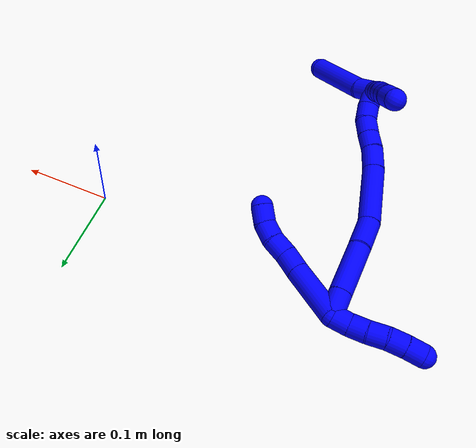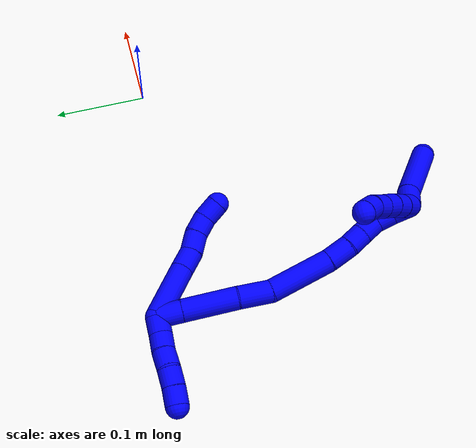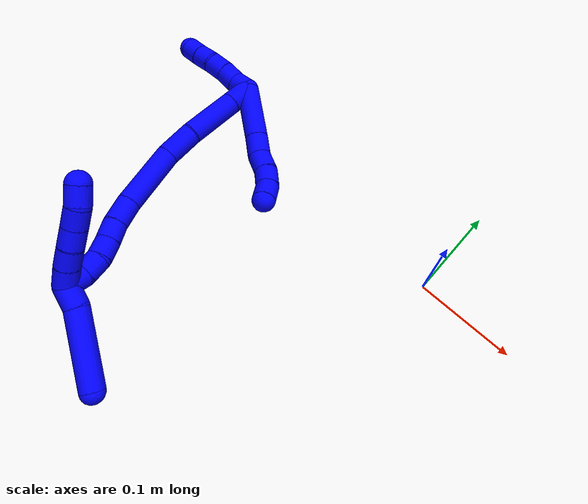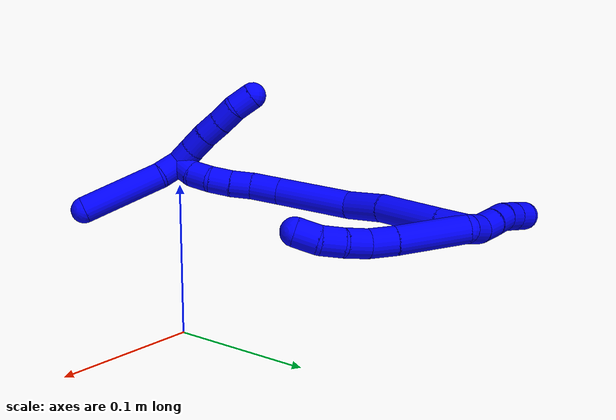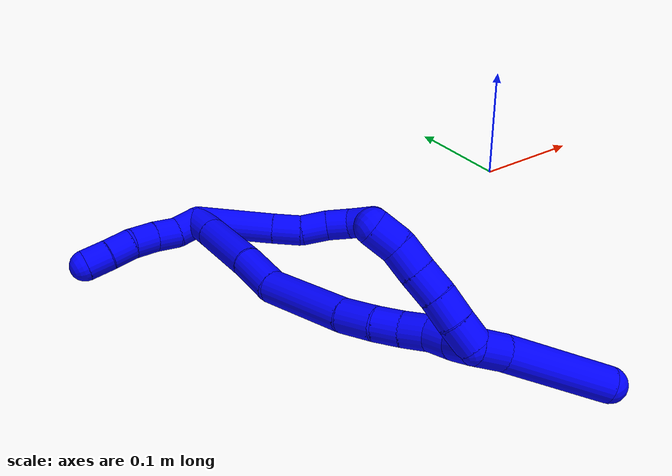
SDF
<sdf version="1.7">
 <world name="default">
  <model name="1">
   <static>0</static>
   <link name="1">
    <collision name="collision-cylinder-e_1_2_8">
     <pose>0.017115 -0.01025 0.024246 0.399953 0.576503 0.120052</pose>
     <geometry><cylinder><radius>0.0125</radius><length>0.062797</length></cylinder></geometry>
     <surface>
      <friction><ode><mu>1.16</mu><mu2>1.16</mu2><slip1>0</slip1><slip2>0</slip2></ode></friction>
      <contact><ode><kp>1e+06</kp><kd>1</kd><max_vel>0</max_vel><min_depth>0.001</min_depth></ode></contact>
     </surface>
    </collision>
    <visual name="visual-cylinder-e_1_2_8">
     <pose>0.017115 -0.01025 0.024246 0.399953 0.576503 0.120052</pose>
     <geometry><cylinder><radius>0.0125</radius><length>0.062797</length></cylinder></geometry>
     <material><ambient>0 0 1 1</ambient></material>
    </visual>
    <collision name="collision-cylinder-e_2_8_9">
     <pose>0.040445 -0.025007 0.057637 0.457974 0.547418 0.130688</pose>
     <geometry><cylinder><radius>0.0125</radius><length>0.023881</length></cylinder></geometry>
     <surface>
      <friction><ode><mu>1.16</mu><mu2>1.16</mu2><slip1>0</slip1><slip2>0</slip2></ode></friction>
      <contact><ode><kp>1e+06</kp><kd>1</kd><max_vel>0</max_vel><min_depth>0.001</min_depth></ode></contact>
     </surface>
    </collision>
    <visual name="visual-cylinder-e_2_8_9">
     <pose>0.040445 -0.025007 0.057637 0.457974 0.547418 0.130688</pose>
     <geometry><cylinder><radius>0.0125</radius><length>0.023881</length></cylinder></geometry>
     <material><ambient>0 0 1 1</ambient></material>
    </visual>
    <collision name="collision-cylinder-e_3_9_10">
     <pose>0.049804 -0.033144 0.076789 0.34791 0.287172 0.050804</pose>
     <geometry><cylinder><radius>0.0125</radius><length>0.022198</length></cylinder></geometry>
     <surface>
      <friction><ode><mu>1.16</mu><mu2>1.16</mu2><slip1>0</slip1><slip2>0</slip2></ode></friction>
      <contact><ode><kp>1e+06</kp><kd>1</kd><max_vel>0</max_vel><min_depth>0.001</min_depth></ode></contact>
     </surface>
    </collision>
    <visual name="visual-cylinder-e_3_9_10">
     <pose>0.049804 -0.033144 0.076789 0.34791 0.287172 0.050804</pose>
     <geometry><cylinder><radius>0.0125</radius><length>0.022198</length></cylinder></geometry>
     <material><ambient>0 0 1 1</ambient></material>
    </visual>
    <collision name="collision-cylinder-e_4_10_11">
     <pose>0.0567 -0.042008 0.094558 0.593299 0.38118 0.11781</pose>
     <geometry><cylinder><radius>0.0125</radius><length>0.020172</length></cylinder></geometry>
     <surface>
      <friction><ode><mu>1.16</mu><mu2>1.16</mu2><slip1>0</slip1><slip2>0</slip2></ode></friction>
      <contact><ode><kp>1e+06</kp><kd>1</kd><max_vel>0</max_vel><min_depth>0.001</min_depth></ode></contact>
     </surface>
    </collision>
    <visual name="visual-cylinder-e_4_10_11">
     <pose>0.0567 -0.042008 0.094558 0.593299 0.38118 0.11781</pose>
     <geometry><cylinder><radius>0.0125</radius><length>0.020172</length></cylinder></geometry>
     <material><ambient>0 0 1 1</ambient></material>
    </visual>
    <collision name="collision-cylinder-e_5_11_6">
     <pose>0.063471 -0.055166 0.108471 0.910681 0.292335 0.143924</pose>
     <geometry><cylinder><radius>0.0125</radius><length>0.020952</length></cylinder></geometry>
     <surface>
      <friction><ode><mu>1.16</mu><mu2>1.16</mu2><slip1>0</slip1><slip2>0</slip2></ode></friction>
      <contact><ode><kp>1e+06</kp><kd>1</kd><max_vel>0</max_vel><min_depth>0.001</min_depth></ode></contact>
     </surface>
    </collision>
    <visual name="visual-cylinder-e_5_11_6">
     <pose>0.063471 -0.055166 0.108471 0.910681 0.292335 0.143924</pose>
     <geometry><cylinder><radius>0.0125</radius><length>0.020952</length></cylinder></geometry>
     <material><ambient>0 0 1 1</ambient></material>
    </visual>
    <collision name="collision-cylinder-e_1_2_12">
     <pose>-3.9e-05 -4.9e-05 -0.01 3.1367 -0.003908 -1.34737</pose>
     <geometry><cylinder><radius>0.0125</radius><length>0.02</length></cylinder></geometry>
     <surface>
      <friction><ode><mu>1.16</mu><mu2>1.16</mu2><slip1>0</slip1><slip2>0</slip2></ode></friction>
      <contact><ode><kp>1e+06</kp><kd>1</kd><max_vel>0</max_vel><min_depth>0.001</min_depth></ode></contact>
     </surface>
    </collision>
    <visual name="visual-cylinder-e_1_2_12">
     <pose>-3.9e-05 -4.9e-05 -0.01 3.1367 -0.003908 -1.34737</pose>
     <geometry><cylinder><radius>0.0125</radius><length>0.02</length></cylinder></geometry>
     <material><ambient>0 0 1 1</ambient></material>
    </visual>
    <collision name="collision-cylinder-e_2_12_13">
     <pose>-0.002858 -0.001525 -0.029499 2.99248 -0.281718 -2.17193</pose>
     <geometry><cylinder><radius>0.0125</radius><length>0.02</length></cylinder></geometry>
     <surface>
      <friction><ode><mu>1.16</mu><mu2>1.16</mu2><slip1>0</slip1><slip2>0</slip2></ode></friction>
      <contact><ode><kp>1e+06</kp><kd>1</kd><max_vel>0</max_vel><min_depth>0.001</min_depth></ode></contact>
     </surface>
    </collision>
    <visual name="visual-cylinder-e_2_12_13">
     <pose>-0.002858 -0.001525 -0.029499 2.99248 -0.281718 -2.17193</pose>
     <geometry><cylinder><radius>0.0125</radius><length>0.02</length></cylinder></geometry>
     <material><ambient>0 0 1 1</ambient></material>
    </visual>
    <collision name="collision-cylinder-e_3_13_14">
     <pose>-0.00739 -0.005086 -0.048609 2.92308 -0.176046 -1.35498</pose>
     <geometry><cylinder><radius>0.0125</radius><length>0.02</length></cylinder></geometry>
     <surface>
      <friction><ode><mu>1.16</mu><mu2>1.16</mu2><slip1>0</slip1><slip2>0</slip2></ode></friction>
      <contact><ode><kp>1e+06</kp><kd>1</kd><max_vel>0</max_vel><min_depth>0.001</min_depth></ode></contact>
     </surface>
    </collision>
    <visual name="visual-cylinder-e_3_13_14">
     <pose>-0.00739 -0.005086 -0.048609 2.92308 -0.176046 -1.35498</pose>
     <geometry><cylinder><radius>0.0125</radius><length>0.02</length></cylinder></geometry>
     <material><ambient>0 0 1 1</ambient></material>
    </visual>
    <collision name="collision-cylinder-e_4_14_15">
     <pose>-0.009398 -0.007964 -0.06819 3.06716 -0.025654 -0.663515</pose>
     <geometry><cylinder><radius>0.0125</radius><length>0.02</length></cylinder></geometry>
     <surface>
      <friction><ode><mu>1.16</mu><mu2>1.16</mu2><slip1>0</slip1><slip2>0</slip2></ode></friction>
      <contact><ode><kp>1e+06</kp><kd>1</kd><max_vel>0</max_vel><min_depth>0.001</min_depth></ode></contact>
     </surface>
    </collision>
    <visual name="visual-cylinder-e_4_14_15">
     <pose>-0.009398 -0.007964 -0.06819 3.06716 -0.025654 -0.663515</pose>
     <geometry><cylinder><radius>0.0125</radius><length>0.02</length></cylinder></geometry>
     <material><ambient>0 0 1 1</ambient></material>
    </visual>
    <collision name="collision-cylinder-e_5_15_5">
     <pose>-0.010229 -0.008779 -0.088142 3.1344 -0.057514 -2.8929</pose>
     <geometry><cylinder><radius>0.0125</radius><length>0.02</length></cylinder></geometry>
     <surface>
      <friction><ode><mu>1.16</mu><mu2>1.16</mu2><slip1>0</slip1><slip2>0</slip2></ode></friction>
      <contact><ode><kp>1e+06</kp><kd>1</kd><max_vel>0</max_vel><min_depth>0.001</min_depth></ode></contact>
     </surface>
    </collision>
    <visual name="visual-cylinder-e_5_15_5">
     <pose>-0.010229 -0.008779 -0.088142 3.1344 -0.057514 -2.8929</pose>
     <geometry><cylinder><radius>0.0125</radius><length>0.02</length></cylinder></geometry>
     <material><ambient>0 0 1 1</ambient></material>
    </visual>
    <collision name="collision-cylinder-e_1_2_16">
     <pose>0.007044 -0.011367 0.000398 1.53581 0.554484 0.536333</pose>
     <geometry><cylinder><radius>0.0125</radius><length>0.026758</length></cylinder></geometry>
     <surface>
      <friction><ode><mu>1.16</mu><mu2>1.16</mu2><slip1>0</slip1><slip2>0</slip2></ode></friction>
      <contact><ode><kp>1e+06</kp><kd>1</kd><max_vel>0</max_vel><min_depth>0.001</min_depth></ode></contact>
     </surface>
    </collision>
    <visual name="visual-cylinder-e_1_2_16">
     <pose>0.007044 -0.011367 0.000398 1.53581 0.554484 0.536333</pose>
     <geometry><cylinder><radius>0.0125</radius><length>0.026758</length></cylinder></geometry>
     <material><ambient>0 0 1 1</ambient></material>
    </visual>
    <collision name="collision-cylinder-e_2_16_17">
     <pose>0.02955 -0.048271 0.001304 1.55088 0.544368 0.534142</pose>
     <geometry><cylinder><radius>0.0125</radius><length>0.059713</length></cylinder></geometry>
     <surface>
      <friction><ode><mu>1.16</mu><mu2>1.16</mu2><slip1>0</slip1><slip2>0</slip2></ode></friction>
      <contact><ode><kp>1e+06</kp><kd>1</kd><max_vel>0</max_vel><min_depth>0.001</min_depth></ode></contact>
     </surface>
    </collision>
    <visual name="visual-cylinder-e_2_16_17">
     <pose>0.02955 -0.048271 0.001304 1.55088 0.544368 0.534142</pose>
     <geometry><cylinder><radius>0.0125</radius><length>0.059713</length></cylinder></geometry>
     <material><ambient>0 0 1 1</ambient></material>
    </visual>
    <collision name="collision-cylinder-e_3_17_18">
     <pose>0.056218 -0.087988 0.002007 1.55714 0.668702 0.660279</pose>
     <geometry><cylinder><radius>0.0125</radius><length>0.036151</length></cylinder></geometry>
     <surface>
      <friction><ode><mu>1.16</mu><mu2>1.16</mu2><slip1>0</slip1><slip2>0</slip2></ode></friction>
      <contact><ode><kp>1e+06</kp><kd>1</kd><max_vel>0</max_vel><min_depth>0.001</min_depth></ode></contact>
     </surface>
    </collision>
    <visual name="visual-cylinder-e_3_17_18">
     <pose>0.056218 -0.087988 0.002007 1.55714 0.668702 0.660279</pose>
     <geometry><cylinder><radius>0.0125</radius><length>0.036151</length></cylinder></geometry>
     <material><ambient>0 0 1 1</ambient></material>
    </visual>
    <collision name="collision-cylinder-e_4_18_19">
     <pose>0.085359 -0.130391 0.011938 1.23855 0.540949 0.390252</pose>
     <geometry><cylinder><radius>0.0125</radius><length>0.069655</length></cylinder></geometry>
     <surface>
      <friction><ode><mu>1.16</mu><mu2>1.16</mu2><slip1>0</slip1><slip2>0</slip2></ode></friction>
      <contact><ode><kp>1e+06</kp><kd>1</kd><max_vel>0</max_vel><min_depth>0.001</min_depth></ode></contact>
     </surface>
    </collision>
    <visual name="visual-cylinder-e_4_18_19">
     <pose>0.085359 -0.130391 0.011938 1.23855 0.540949 0.390252</pose>
     <geometry><cylinder><radius>0.0125</radius><length>0.069655</length></cylinder></geometry>
     <material><ambient>0 0 1 1</ambient></material>
    </visual>
    <collision name="collision-cylinder-e_5_19_20">
     <pose>0.109777 -0.169115 0.027142 1.09089 0.500977 0.308083</pose>
     <geometry><cylinder><radius>0.0125</radius><length>0.026998</length></cylinder></geometry>
     <surface>
      <friction><ode><mu>1.16</mu><mu2>1.16</mu2><slip1>0</slip1><slip2>0</slip2></ode></friction>
      <contact><ode><kp>1e+06</kp><kd>1</kd><max_vel>0</max_vel><min_depth>0.001</min_depth></ode></contact>
     </surface>
    </collision>
    <visual name="visual-cylinder-e_5_19_20">
     <pose>0.109777 -0.169115 0.027142 1.09089 0.500977 0.308083</pose>
     <geometry><cylinder><radius>0.0125</radius><length>0.026998</length></cylinder></geometry>
     <material><ambient>0 0 1 1</ambient></material>
    </visual>
    <collision name="collision-cylinder-e_6_20_21">
     <pose>0.121417 -0.186539 0.037968 0.911905 0.532428 0.265883</pose>
     <geometry><cylinder><radius>0.0125</radius><length>0.02032</length></cylinder></geometry>
     <surface>
      <friction><ode><mu>1.16</mu><mu2>1.16</mu2><slip1>0</slip1><slip2>0</slip2></ode></friction>
      <contact><ode><kp>1e+06</kp><kd>1</kd><max_vel>0</max_vel><min_depth>0.001</min_depth></ode></contact>
     </surface>
    </collision>
    <visual name="visual-cylinder-e_6_20_21">
     <pose>0.121417 -0.186539 0.037968 0.911905 0.532428 0.265883</pose>
     <geometry><cylinder><radius>0.0125</radius><length>0.02032</length></cylinder></geometry>
     <material><ambient>0 0 1 1</ambient></material>
    </visual>
    <collision name="collision-cylinder-e_7_21_22">
     <pose>0.130944 -0.200929 0.048439 0.970606 0.449773 0.240117</pose>
     <geometry><cylinder><radius>0.0125</radius><length>0.020101</length></cylinder></geometry>
     <surface>
      <friction><ode><mu>1.16</mu><mu2>1.16</mu2><slip1>0</slip1><slip2>0</slip2></ode></friction>
      <contact><ode><kp>1e+06</kp><kd>1</kd><max_vel>0</max_vel><min_depth>0.001</min_depth></ode></contact>
     </surface>
    </collision>
    <visual name="visual-cylinder-e_7_21_22">
     <pose>0.130944 -0.200929 0.048439 0.970606 0.449773 0.240117</pose>
     <geometry><cylinder><radius>0.0125</radius><length>0.020101</length></cylinder></geometry>
     <material><ambient>0 0 1 1</ambient></material>
    </visual>
    <collision name="collision-cylinder-e_8_22_23">
     <pose>0.139822 -0.217095 0.055947 1.30199 0.463471 0.355719</pose>
     <geometry><cylinder><radius>0.0125</radius><length>0.020169</length></cylinder></geometry>
     <surface>
      <friction><ode><mu>1.16</mu><mu2>1.16</mu2><slip1>0</slip1><slip2>0</slip2></ode></friction>
      <contact><ode><kp>1e+06</kp><kd>1</kd><max_vel>0</max_vel><min_depth>0.001</min_depth></ode></contact>
     </surface>
    </collision>
    <visual name="visual-cylinder-e_8_22_23">
     <pose>0.139822 -0.217095 0.055947 1.30199 0.463471 0.355719</pose>
     <geometry><cylinder><radius>0.0125</radius><length>0.020169</length></cylinder></geometry>
     <material><ambient>0 0 1 1</ambient></material>
    </visual>
    <collision name="collision-cylinder-e_9_23_1">
     <pose>0.146382 -0.235595 0.059374 1.46598 0.205173 0.184843</pose>
     <geometry><cylinder><radius>0.0125</radius><length>0.020136</length></cylinder></geometry>
     <surface>
      <friction><ode><mu>1.16</mu><mu2>1.16</mu2><slip1>0</slip1><slip2>0</slip2></ode></friction>
      <contact><ode><kp>1e+06</kp><kd>1</kd><max_vel>0</max_vel><min_depth>0.001</min_depth></ode></contact>
     </surface>
    </collision>
    <visual name="visual-cylinder-e_9_23_1">
     <pose>0.146382 -0.235595 0.059374 1.46598 0.205173 0.184843</pose>
     <geometry><cylinder><radius>0.0125</radius><length>0.020136</length></cylinder></geometry>
     <material><ambient>0 0 1 1</ambient></material>
    </visual>
    <collision name="collision-cylinder-e_1_1_24">
     <pose>0.138573 -0.24474 0.05887 -2.73679 -1.40303 2.66505</pose>
     <geometry><cylinder><radius>0.0125</radius><length>0.02</length></cylinder></geometry>
     <surface>
      <friction><ode><mu>1.16</mu><mu2>1.16</mu2><slip1>0</slip1><slip2>0</slip2></ode></friction>
      <contact><ode><kp>1e+06</kp><kd>1</kd><max_vel>0</max_vel><min_depth>0.001</min_depth></ode></contact>
     </surface>
    </collision>
    <visual name="visual-cylinder-e_1_1_24">
     <pose>0.138573 -0.24474 0.05887 -2.73679 -1.40303 2.66505</pose>
     <geometry><cylinder><radius>0.0125</radius><length>0.02</length></cylinder></geometry>
     <material><ambient>0 0 1 1</ambient></material>
    </visual>
    <collision name="collision-cylinder-e_2_24_25">
     <pose>0.11883 -0.242861 0.056428 -2.21021 -1.41807 2.08172</pose>
     <geometry><cylinder><radius>0.0125</radius><length>0.02</length></cylinder></geometry>
     <surface>
      <friction><ode><mu>1.16</mu><mu2>1.16</mu2><slip1>0</slip1><slip2>0</slip2></ode></friction>
      <contact><ode><kp>1e+06</kp><kd>1</kd><max_vel>0</max_vel><min_depth>0.001</min_depth></ode></contact>
     </surface>
    </collision>
    <visual name="visual-cylinder-e_2_24_25">
     <pose>0.11883 -0.242861 0.056428 -2.21021 -1.41807 2.08172</pose>
     <geometry><cylinder><radius>0.0125</radius><length>0.02</length></cylinder></geometry>
     <material><ambient>0 0 1 1</ambient></material>
    </visual>
    <collision name="collision-cylinder-e_3_25_26">
     <pose>0.099236 -0.239853 0.053934 -2.29657 -1.32946 2.09993</pose>
     <geometry><cylinder><radius>0.0125</radius><length>0.02</length></cylinder></geometry>
     <surface>
      <friction><ode><mu>1.16</mu><mu2>1.16</mu2><slip1>0</slip1><slip2>0</slip2></ode></friction>
      <contact><ode><kp>1e+06</kp><kd>1</kd><max_vel>0</max_vel><min_depth>0.001</min_depth></ode></contact>
     </surface>
    </collision>
    <visual name="visual-cylinder-e_3_25_26">
     <pose>0.099236 -0.239853 0.053934 -2.29657 -1.32946 2.09993</pose>
     <geometry><cylinder><radius>0.0125</radius><length>0.02</length></cylinder></geometry>
     <material><ambient>0 0 1 1</ambient></material>
    </visual>
    <collision name="collision-cylinder-e_4_26_27">
     <pose>0.079711 -0.236655 0.051052 -2.3137 -1.37813 2.16169</pose>
     <geometry><cylinder><radius>0.0125</radius><length>0.02</length></cylinder></geometry>
     <surface>
      <friction><ode><mu>1.16</mu><mu2>1.16</mu2><slip1>0</slip1><slip2>0</slip2></ode></friction>
      <contact><ode><kp>1e+06</kp><kd>1</kd><max_vel>0</max_vel><min_depth>0.001</min_depth></ode></contact>
     </surface>
    </collision>
    <visual name="visual-cylinder-e_4_26_27">
     <pose>0.079711 -0.236655 0.051052 -2.3137 -1.37813 2.16169</pose>
     <geometry><cylinder><radius>0.0125</radius><length>0.02</length></cylinder></geometry>
     <material><ambient>0 0 1 1</ambient></material>
    </visual>
    <collision name="collision-cylinder-e_5_27_4">
     <pose>0.060785 -0.233821 0.045889 -2.78888 -1.14602 2.60263</pose>
     <geometry><cylinder><radius>0.0125</radius><length>0.02</length></cylinder></geometry>
     <surface>
      <friction><ode><mu>1.16</mu><mu2>1.16</mu2><slip1>0</slip1><slip2>0</slip2></ode></friction>
      <contact><ode><kp>1e+06</kp><kd>1</kd><max_vel>0</max_vel><min_depth>0.001</min_depth></ode></contact>
     </surface>
    </collision>
    <visual name="visual-cylinder-e_5_27_4">
     <pose>0.060785 -0.233821 0.045889 -2.78888 -1.14602 2.60263</pose>
     <geometry><cylinder><radius>0.0125</radius><length>0.02</length></cylinder></geometry>
     <material><ambient>0 0 1 1</ambient></material>
    </visual>
    <collision name="collision-cylinder-e_1_1_28">
     <pose>0.15563 -0.244063 0.068977 -0.15445 0.692566 -0.055826</pose>
     <geometry><cylinder><radius>0.0125</radius><length>0.022543</length></cylinder></geometry>
     <surface>
      <friction><ode><mu>1.16</mu><mu2>1.16</mu2><slip1>0</slip1><slip2>0</slip2></ode></friction>
      <contact><ode><kp>1e+06</kp><kd>1</kd><max_vel>0</max_vel><min_depth>0.001</min_depth></ode></contact>
     </surface>
    </collision>
    <visual name="visual-cylinder-e_1_1_28">
     <pose>0.15563 -0.244063 0.068977 -0.15445 0.692566 -0.055826</pose>
     <geometry><cylinder><radius>0.0125</radius><length>0.022543</length></cylinder></geometry>
     <material><ambient>0 0 1 1</ambient></material>
    </visual>
    <collision name="collision-cylinder-e_2_28_3">
     <pose>0.190488 -0.247166 0.104289 0.164465 0.795525 0.06923</pose>
     <geometry><cylinder><radius>0.0125</radius><length>0.077457</length></cylinder></geometry>
     <surface>
      <friction><ode><mu>1.16</mu><mu2>1.16</mu2><slip1>0</slip1><slip2>0</slip2></ode></friction>
      <contact><ode><kp>1e+06</kp><kd>1</kd><max_vel>0</max_vel><min_depth>0.001</min_depth></ode></contact>
     </surface>
    </collision>
    <visual name="visual-cylinder-e_2_28_3">
     <pose>0.190488 -0.247166 0.104289 0.164465 0.795525 0.06923</pose>
     <geometry><cylinder><radius>0.0125</radius><length>0.077457</length></cylinder></geometry>
     <material><ambient>0 0 1 1</ambient></material>
    </visual>
    <collision name="collision-sphere-3">
     <pose>0.218149 -0.251604 0.131029 0 -0 0</pose>
     <geometry><sphere><radius>0.0125</radius></sphere></geometry>
     <surface>
      <friction><ode><mu>1.16</mu><mu2>1.16</mu2><slip1>0</slip1><slip2>0</slip2></ode></friction>
      <contact><ode><kp>1e+06</kp><kd>1</kd><max_vel>0</max_vel><min_depth>0.001</min_depth></ode></contact>
     </surface>
    </collision>
    <visual name="visual-sphere-3">
     <pose>0.218149 -0.251604 0.131029 0 -0 0</pose>
     <geometry><sphere><radius>0.0125</radius></sphere></geometry>
     <material><ambient>0 0 1 1</ambient></material>
    </visual>
    <collision name="collision-sphere-28">
     <pose>0.162827 -0.242728 0.077548 0 -0 0</pose>
     <geometry><sphere><radius>0.0125</radius></sphere></geometry>
     <surface>
      <friction><ode><mu>1.16</mu><mu2>1.16</mu2><slip1>0</slip1><slip2>0</slip2></ode></friction>
      <contact><ode><kp>1e+06</kp><kd>1</kd><max_vel>0</max_vel><min_depth>0.001</min_depth></ode></contact>
     </surface>
    </collision>
    <visual name="visual-sphere-28">
     <pose>0.162827 -0.242728 0.077548 0 -0 0</pose>
     <geometry><sphere><radius>0.0125</radius></sphere></geometry>
     <material><ambient>0 0 1 1</ambient></material>
    </visual>
    <collision name="collision-sphere-4">
     <pose>0.051674 -0.232397 0.042022 0 -0 0</pose>
     <geometry><sphere><radius>0.0125</radius></sphere></geometry>
     <surface>
      <friction><ode><mu>1.16</mu><mu2>1.16</mu2><slip1>0</slip1><slip2>0</slip2></ode></friction>
      <contact><ode><kp>1e+06</kp><kd>1</kd><max_vel>0</max_vel><min_depth>0.001</min_depth></ode></contact>
     </surface>
    </collision>
    <visual name="visual-sphere-4">
     <pose>0.051674 -0.232397 0.042022 0 -0 0</pose>
     <geometry><sphere><radius>0.0125</radius></sphere></geometry>
     <material><ambient>0 0 1 1</ambient></material>
    </visual>
    <collision name="collision-sphere-27">
     <pose>0.069896 -0.235245 0.049757 0 -0 0</pose>
     <geometry><sphere><radius>0.0125</radius></sphere></geometry>
     <surface>
      <friction><ode><mu>1.16</mu><mu2>1.16</mu2><slip1>0</slip1><slip2>0</slip2></ode></friction>
      <contact><ode><kp>1e+06</kp><kd>1</kd><max_vel>0</max_vel><min_depth>0.001</min_depth></ode></contact>
     </surface>
    </collision>
    <visual name="visual-sphere-27">
     <pose>0.069896 -0.235245 0.049757 0 -0 0</pose>
     <geometry><sphere><radius>0.0125</radius></sphere></geometry>
     <material><ambient>0 0 1 1</ambient></material>
    </visual>
    <collision name="collision-sphere-26">
     <pose>0.089526 -0.238065 0.052347 0 -0 0</pose>
     <geometry><sphere><radius>0.0125</radius></sphere></geometry>
     <surface>
      <friction><ode><mu>1.16</mu><mu2>1.16</mu2><slip1>0</slip1><slip2>0</slip2></ode></friction>
      <contact><ode><kp>1e+06</kp><kd>1</kd><max_vel>0</max_vel><min_depth>0.001</min_depth></ode></contact>
     </surface>
    </collision>
    <visual name="visual-sphere-26">
     <pose>0.089526 -0.238065 0.052347 0 -0 0</pose>
     <geometry><sphere><radius>0.0125</radius></sphere></geometry>
     <material><ambient>0 0 1 1</ambient></material>
    </visual>
    <collision name="collision-sphere-25">
     <pose>0.108946 -0.241641 0.05552 0 -0 0</pose>
     <geometry><sphere><radius>0.0125</radius></sphere></geometry>
     <surface>
      <friction><ode><mu>1.16</mu><mu2>1.16</mu2><slip1>0</slip1><slip2>0</slip2></ode></friction>
      <contact><ode><kp>1e+06</kp><kd>1</kd><max_vel>0</max_vel><min_depth>0.001</min_depth></ode></contact>
     </surface>
    </collision>
    <visual name="visual-sphere-25">
     <pose>0.108946 -0.241641 0.05552 0 -0 0</pose>
     <geometry><sphere><radius>0.0125</radius></sphere></geometry>
     <material><ambient>0 0 1 1</ambient></material>
    </visual>
    <collision name="collision-sphere-24">
     <pose>0.128714 -0.244082 0.057336 0 -0 0</pose>
     <geometry><sphere><radius>0.0125</radius></sphere></geometry>
     <surface>
      <friction><ode><mu>1.16</mu><mu2>1.16</mu2><slip1>0</slip1><slip2>0</slip2></ode></friction>
      <contact><ode><kp>1e+06</kp><kd>1</kd><max_vel>0</max_vel><min_depth>0.001</min_depth></ode></contact>
     </surface>
    </collision>
    <visual name="visual-sphere-24">
     <pose>0.128714 -0.244082 0.057336 0 -0 0</pose>
     <geometry><sphere><radius>0.0125</radius></sphere></geometry>
     <material><ambient>0 0 1 1</ambient></material>
    </visual>
    <collision name="collision-sphere-1">
     <pose>0.148433 -0.245397 0.060405 0 -0 0</pose>
     <geometry><sphere><radius>0.0125</radius></sphere></geometry>
     <surface>
      <friction><ode><mu>1.16</mu><mu2>1.16</mu2><slip1>0</slip1><slip2>0</slip2></ode></friction>
      <contact><ode><kp>1e+06</kp><kd>1</kd><max_vel>0</max_vel><min_depth>0.001</min_depth></ode></contact>
     </surface>
    </collision>
    <visual name="visual-sphere-1">
     <pose>0.148433 -0.245397 0.060405 0 -0 0</pose>
     <geometry><sphere><radius>0.0125</radius></sphere></geometry>
     <material><ambient>0 0 1 1</ambient></material>
    </visual>
    <collision name="collision-sphere-23">
     <pose>0.14433 -0.225792 0.058343 0 -0 0</pose>
     <geometry><sphere><radius>0.0125</radius></sphere></geometry>
     <surface>
      <friction><ode><mu>1.16</mu><mu2>1.16</mu2><slip1>0</slip1><slip2>0</slip2></ode></friction>
      <contact><ode><kp>1e+06</kp><kd>1</kd><max_vel>0</max_vel><min_depth>0.001</min_depth></ode></contact>
     </surface>
    </collision>
    <visual name="visual-sphere-23">
     <pose>0.14433 -0.225792 0.058343 0 -0 0</pose>
     <geometry><sphere><radius>0.0125</radius></sphere></geometry>
     <material><ambient>0 0 1 1</ambient></material>
    </visual>
    <collision name="collision-sphere-22">
     <pose>0.135314 -0.208398 0.053551 0 -0 0</pose>
     <geometry><sphere><radius>0.0125</radius></sphere></geometry>
     <surface>
      <friction><ode><mu>1.16</mu><mu2>1.16</mu2><slip1>0</slip1><slip2>0</slip2></ode></friction>
      <contact><ode><kp>1e+06</kp><kd>1</kd><max_vel>0</max_vel><min_depth>0.001</min_depth></ode></contact>
     </surface>
    </collision>
    <visual name="visual-sphere-22">
     <pose>0.135314 -0.208398 0.053551 0 -0 0</pose>
     <geometry><sphere><radius>0.0125</radius></sphere></geometry>
     <material><ambient>0 0 1 1</ambient></material>
    </visual>
    <collision name="collision-sphere-21">
     <pose>0.126575 -0.19346 0.043327 0 -0 0</pose>
     <geometry><sphere><radius>0.0125</radius></sphere></geometry>
     <surface>
      <friction><ode><mu>1.16</mu><mu2>1.16</mu2><slip1>0</slip1><slip2>0</slip2></ode></friction>
      <contact><ode><kp>1e+06</kp><kd>1</kd><max_vel>0</max_vel><min_depth>0.001</min_depth></ode></contact>
     </surface>
    </collision>
    <visual name="visual-sphere-21">
     <pose>0.126575 -0.19346 0.043327 0 -0 0</pose>
     <geometry><sphere><radius>0.0125</radius></sphere></geometry>
     <material><ambient>0 0 1 1</ambient></material>
    </visual>
    <collision name="collision-sphere-6">
     <pose>0.06649 -0.06309 0.114623 0 -0 0</pose>
     <geometry><sphere><radius>0.0125</radius></sphere></geometry>
     <surface>
      <friction><ode><mu>1.16</mu><mu2>1.16</mu2><slip1>0</slip1><slip2>0</slip2></ode></friction>
      <contact><ode><kp>1e+06</kp><kd>1</kd><max_vel>0</max_vel><min_depth>0.001</min_depth></ode></contact>
     </surface>
    </collision>
    <visual name="visual-sphere-6">
     <pose>0.06649 -0.06309 0.114623 0 -0 0</pose>
     <geometry><sphere><radius>0.0125</radius></sphere></geometry>
     <material><ambient>0 0 1 1</ambient></material>
    </visual>
    <collision name="collision-sphere-11">
     <pose>0.060452 -0.047242 0.10232 0 -0 0</pose>
     <geometry><sphere><radius>0.0125</radius></sphere></geometry>
     <surface>
      <friction><ode><mu>1.16</mu><mu2>1.16</mu2><slip1>0</slip1><slip2>0</slip2></ode></friction>
      <contact><ode><kp>1e+06</kp><kd>1</kd><max_vel>0</max_vel><min_depth>0.001</min_depth></ode></contact>
     </surface>
    </collision>
    <visual name="visual-sphere-11">
     <pose>0.060452 -0.047242 0.10232 0 -0 0</pose>
     <geometry><sphere><radius>0.0125</radius></sphere></geometry>
     <material><ambient>0 0 1 1</ambient></material>
    </visual>
    <collision name="collision-sphere-10">
     <pose>0.052947 -0.036773 0.086796 0 -0 0</pose>
     <geometry><sphere><radius>0.0125</radius></sphere></geometry>
     <surface>
      <friction><ode><mu>1.16</mu><mu2>1.16</mu2><slip1>0</slip1><slip2>0</slip2></ode></friction>
      <contact><ode><kp>1e+06</kp><kd>1</kd><max_vel>0</max_vel><min_depth>0.001</min_depth></ode></contact>
     </surface>
    </collision>
    <visual name="visual-sphere-10">
     <pose>0.052947 -0.036773 0.086796 0 -0 0</pose>
     <geometry><sphere><radius>0.0125</radius></sphere></geometry>
     <material><ambient>0 0 1 1</ambient></material>
    </visual>
    <collision name="collision-sphere-9">
     <pose>0.04666 -0.029515 0.066782 0 -0 0</pose>
     <geometry><sphere><radius>0.0125</radius></sphere></geometry>
     <surface>
      <friction><ode><mu>1.16</mu><mu2>1.16</mu2><slip1>0</slip1><slip2>0</slip2></ode></friction>
      <contact><ode><kp>1e+06</kp><kd>1</kd><max_vel>0</max_vel><min_depth>0.001</min_depth></ode></contact>
     </surface>
    </collision>
    <visual name="visual-sphere-9">
     <pose>0.04666 -0.029515 0.066782 0 -0 0</pose>
     <geometry><sphere><radius>0.0125</radius></sphere></geometry>
     <material><ambient>0 0 1 1</ambient></material>
    </visual>
    <collision name="collision-sphere-2">
     <geometry><sphere><radius>0.0125</radius></sphere></geometry>
     <surface>
      <friction><ode><mu>1.16</mu><mu2>1.16</mu2><slip1>0</slip1><slip2>0</slip2></ode></friction>
      <contact><ode><kp>1e+06</kp><kd>1</kd><max_vel>0</max_vel><min_depth>0.001</min_depth></ode></contact>
     </surface>
    </collision>
    <visual name="visual-sphere-2">
     <geometry><sphere><radius>0.0125</radius></sphere></geometry>
     <material><ambient>0 0 1 1</ambient></material>
    </visual>
    <collision name="collision-sphere-19">
     <pose>0.103293 -0.158613 0.021676 0 -0 0</pose>
     <geometry><sphere><radius>0.0125</radius></sphere></geometry>
     <surface>
      <friction><ode><mu>1.16</mu><mu2>1.16</mu2><slip1>0</slip1><slip2>0</slip2></ode></friction>
      <contact><ode><kp>1e+06</kp><kd>1</kd><max_vel>0</max_vel><min_depth>0.001</min_depth></ode></contact>
     </surface>
    </collision>
    <visual name="visual-sphere-19">
     <pose>0.103293 -0.158613 0.021676 0 -0 0</pose>
     <geometry><sphere><radius>0.0125</radius></sphere></geometry>
     <material><ambient>0 0 1 1</ambient></material>
    </visual>
    <collision name="collision-sphere-8">
     <pose>0.03423 -0.0205 0.048492 0 -0 0</pose>
     <geometry><sphere><radius>0.0125</radius></sphere></geometry>
     <surface>
      <friction><ode><mu>1.16</mu><mu2>1.16</mu2><slip1>0</slip1><slip2>0</slip2></ode></friction>
      <contact><ode><kp>1e+06</kp><kd>1</kd><max_vel>0</max_vel><min_depth>0.001</min_depth></ode></contact>
     </surface>
    </collision>
    <visual name="visual-sphere-8">
     <pose>0.03423 -0.0205 0.048492 0 -0 0</pose>
     <geometry><sphere><radius>0.0125</radius></sphere></geometry>
     <material><ambient>0 0 1 1</ambient></material>
    </visual>
    <collision name="collision-sphere-12">
     <pose>-7.8e-05 -9.8e-05 -0.02 0 -0 0</pose>
     <geometry><sphere><radius>0.0125</radius></sphere></geometry>
     <surface>
      <friction><ode><mu>1.16</mu><mu2>1.16</mu2><slip1>0</slip1><slip2>0</slip2></ode></friction>
      <contact><ode><kp>1e+06</kp><kd>1</kd><max_vel>0</max_vel><min_depth>0.001</min_depth></ode></contact>
     </surface>
    </collision>
    <visual name="visual-sphere-12">
     <pose>-7.8e-05 -9.8e-05 -0.02 0 -0 0</pose>
     <geometry><sphere><radius>0.0125</radius></sphere></geometry>
     <material><ambient>0 0 1 1</ambient></material>
    </visual>
    <collision name="collision-sphere-13">
     <pose>-0.005638 -0.002952 -0.038998 0 -0 0</pose>
     <geometry><sphere><radius>0.0125</radius></sphere></geometry>
     <surface>
      <friction><ode><mu>1.16</mu><mu2>1.16</mu2><slip1>0</slip1><slip2>0</slip2></ode></friction>
      <contact><ode><kp>1e+06</kp><kd>1</kd><max_vel>0</max_vel><min_depth>0.001</min_depth></ode></contact>
     </surface>
    </collision>
    <visual name="visual-sphere-13">
     <pose>-0.005638 -0.002952 -0.038998 0 -0 0</pose>
     <geometry><sphere><radius>0.0125</radius></sphere></geometry>
     <material><ambient>0 0 1 1</ambient></material>
    </visual>
    <collision name="collision-sphere-14">
     <pose>-0.009141 -0.007221 -0.058221 0 -0 0</pose>
     <geometry><sphere><radius>0.0125</radius></sphere></geometry>
     <surface>
      <friction><ode><mu>1.16</mu><mu2>1.16</mu2><slip1>0</slip1><slip2>0</slip2></ode></friction>
      <contact><ode><kp>1e+06</kp><kd>1</kd><max_vel>0</max_vel><min_depth>0.001</min_depth></ode></contact>
     </surface>
    </collision>
    <visual name="visual-sphere-14">
     <pose>-0.009141 -0.007221 -0.058221 0 -0 0</pose>
     <geometry><sphere><radius>0.0125</radius></sphere></geometry>
     <material><ambient>0 0 1 1</ambient></material>
    </visual>
    <collision name="collision-sphere-15">
     <pose>-0.009654 -0.008707 -0.078159 0 -0 0</pose>
     <geometry><sphere><radius>0.0125</radius></sphere></geometry>
     <surface>
      <friction><ode><mu>1.16</mu><mu2>1.16</mu2><slip1>0</slip1><slip2>0</slip2></ode></friction>
      <contact><ode><kp>1e+06</kp><kd>1</kd><max_vel>0</max_vel><min_depth>0.001</min_depth></ode></contact>
     </surface>
    </collision>
    <visual name="visual-sphere-15">
     <pose>-0.009654 -0.008707 -0.078159 0 -0 0</pose>
     <geometry><sphere><radius>0.0125</radius></sphere></geometry>
     <material><ambient>0 0 1 1</ambient></material>
    </visual>
    <collision name="collision-sphere-5">
     <pose>-0.010804 -0.008851 -0.098125 0 -0 0</pose>
     <geometry><sphere><radius>0.0125</radius></sphere></geometry>
     <surface>
      <friction><ode><mu>1.16</mu><mu2>1.16</mu2><slip1>0</slip1><slip2>0</slip2></ode></friction>
      <contact><ode><kp>1e+06</kp><kd>1</kd><max_vel>0</max_vel><min_depth>0.001</min_depth></ode></contact>
     </surface>
    </collision>
    <visual name="visual-sphere-5">
     <pose>-0.010804 -0.008851 -0.098125 0 -0 0</pose>
     <geometry><sphere><radius>0.0125</radius></sphere></geometry>
     <material><ambient>0 0 1 1</ambient></material>
    </visual>
    <collision name="collision-sphere-16">
     <pose>0.014088 -0.022735 0.000796 0 -0 0</pose>
     <geometry><sphere><radius>0.0125</radius></sphere></geometry>
     <surface>
      <friction><ode><mu>1.16</mu><mu2>1.16</mu2><slip1>0</slip1><slip2>0</slip2></ode></friction>
      <contact><ode><kp>1e+06</kp><kd>1</kd><max_vel>0</max_vel><min_depth>0.001</min_depth></ode></contact>
     </surface>
    </collision>
    <visual name="visual-sphere-16">
     <pose>0.014088 -0.022735 0.000796 0 -0 0</pose>
     <geometry><sphere><radius>0.0125</radius></sphere></geometry>
     <material><ambient>0 0 1 1</ambient></material>
    </visual>
    <collision name="collision-sphere-17">
     <pose>0.045012 -0.073807 0.001813 0 -0 0</pose>
     <geometry><sphere><radius>0.0125</radius></sphere></geometry>
     <surface>
      <friction><ode><mu>1.16</mu><mu2>1.16</mu2><slip1>0</slip1><slip2>0</slip2></ode></friction>
      <contact><ode><kp>1e+06</kp><kd>1</kd><max_vel>0</max_vel><min_depth>0.001</min_depth></ode></contact>
     </surface>
    </collision>
    <visual name="visual-sphere-17">
     <pose>0.045012 -0.073807 0.001813 0 -0 0</pose>
     <geometry><sphere><radius>0.0125</radius></sphere></geometry>
     <material><ambient>0 0 1 1</ambient></material>
    </visual>
    <collision name="collision-sphere-18">
     <pose>0.067425 -0.102169 0.0022 0 -0 0</pose>
     <geometry><sphere><radius>0.0125</radius></sphere></geometry>
     <surface>
      <friction><ode><mu>1.16</mu><mu2>1.16</mu2><slip1>0</slip1><slip2>0</slip2></ode></friction>
      <contact><ode><kp>1e+06</kp><kd>1</kd><max_vel>0</max_vel><min_depth>0.001</min_depth></ode></contact>
     </surface>
    </collision>
    <visual name="visual-sphere-18">
     <pose>0.067425 -0.102169 0.0022 0 -0 0</pose>
     <geometry><sphere><radius>0.0125</radius></sphere></geometry>
     <material><ambient>0 0 1 1</ambient></material>
    </visual>
    <collision name="collision-sphere-20">
     <pose>0.11626 -0.179618 0.032609 0 -0 0</pose>
     <geometry><sphere><radius>0.0125</radius></sphere></geometry>
     <surface>
      <friction><ode><mu>1.16</mu><mu2>1.16</mu2><slip1>0</slip1><slip2>0</slip2></ode></friction>
      <contact><ode><kp>1e+06</kp><kd>1</kd><max_vel>0</max_vel><min_depth>0.001</min_depth></ode></contact>
     </surface>
    </collision>
    <visual name="visual-sphere-20">
     <pose>0.11626 -0.179618 0.032609 0 -0 0</pose>
     <geometry><sphere><radius>0.0125</radius></sphere></geometry>
     <material><ambient>0 0 1 1</ambient></material>
    </visual>
    <inertial>
     <pose>0.075985 -0.120027 0.032861 0 -0 0</pose>
     <mass>0.75</mass>
     <inertia><ixx>0.000146</ixx><ixy>0</ixy><ixz>0</ixz><iyy>0.000108</iyy><iyz>0</iyz><izz>8e-06</izz></inertia>
    </inertial>
   </link>
   <pose>-0.288741 0.045168 0.019459 -1.19447 0.941676 -1.28609</pose>
  </model>
 </world>
</sdf>
